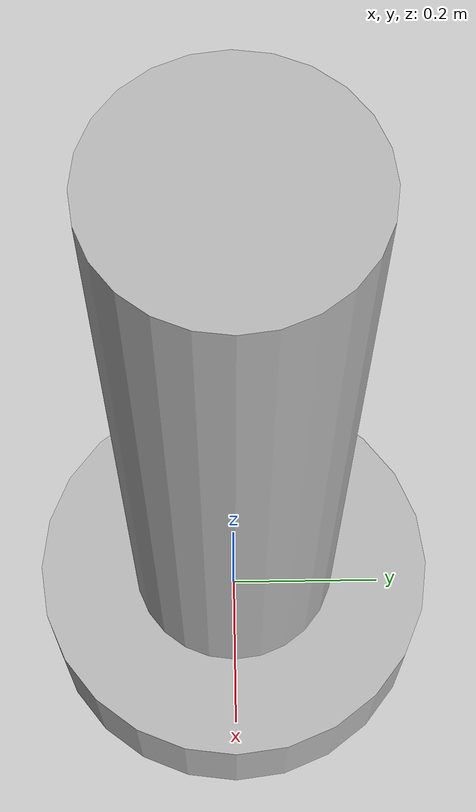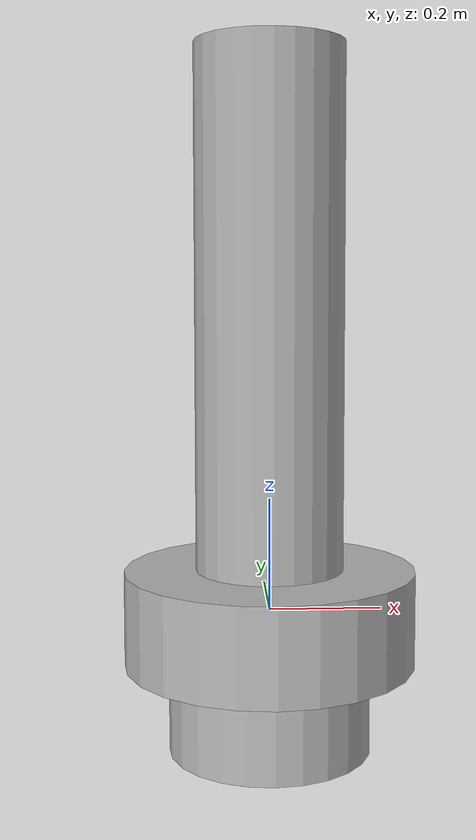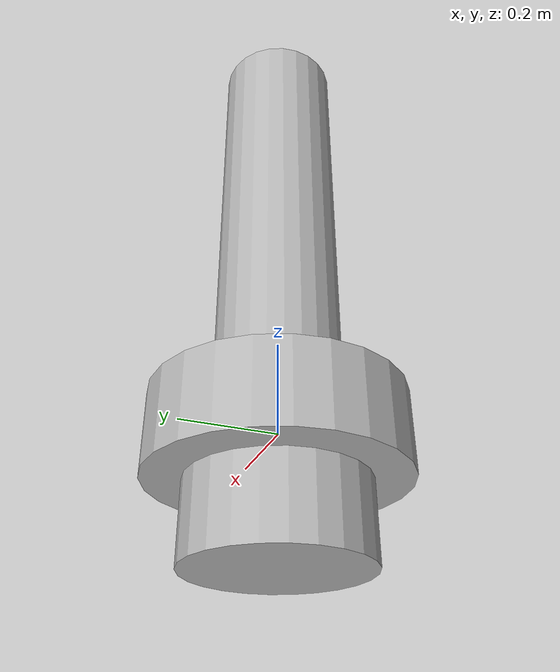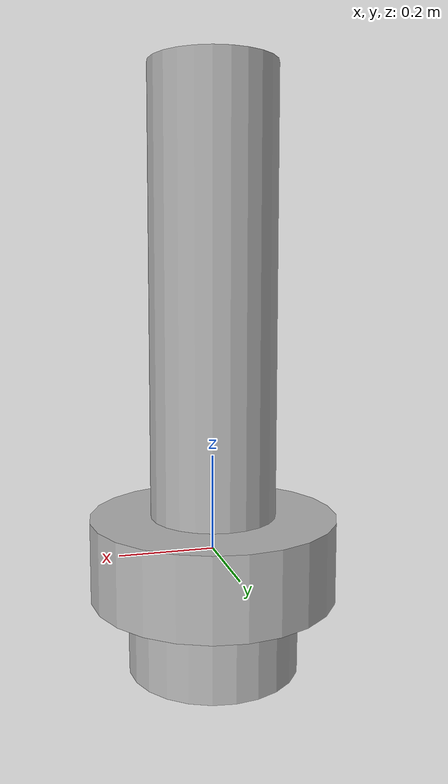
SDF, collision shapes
<?xml version="1.0"?>
<sdf version="1.9">
  <model name="roboboat_surmark_46104_white">
    <link name="link">
      <inertial>
        <pose>0 0 -0.2556 0 0 0</pose>
        <mass>36.4742</mass>
        <inertia>
          <ixx>4.94454</ixx>
          <ixy>0</ixy>
          <ixz>0</ixz>
          <iyy>4.94454</iyy>
          <iyz>0</iyz>
          <izz>0.410335</izz>
        </inertia>
      </inertial>
      <collision name="skirt_collision">
        <pose>0 0 -0.1758 0 0 0</pose>
        <geometry>
          <cylinder><radius>0.181</radius><length>0.1596</length></cylinder>
        </geometry>
      </collision>
      <collision name="ring_collision">
        <pose>0 0 -0.011 0 0 0</pose>
        <geometry>
          <cylinder><radius>0.26</radius><length>0.17</length></cylinder>
        </geometry>
      </collision>
      <collision name="column_collision">
        <pose>0 0 0.5335 0 0 0</pose>
        <geometry>
          <cylinder><radius>0.132</radius><length>0.9191</length></cylinder>
        </geometry>
      </collision>
      <visual name="visual">
        <geometry>
          <mesh>
            <uri>https://fuel.gazebosim.org/1.0/ngxingyu/models/surmark46104white/tip/files/meshes/white_surmark.dae</uri>
          </mesh>
        </geometry>
      </visual>
    </link>
    <joint name="mooring" type="prismatic">
      <parent>world</parent>
      <child>link</child>
      <axis>
        <xyz>0 0 1</xyz>
      </axis>
    </joint>
    <plugin name="vrx::PolyhedraBuoyancyDrag" filename="libPolyhedraBuoyancyDrag.so">
      <linear_drag>25</linear_drag>
      <angular_drag>2</angular_drag>
      <buoyancy name="skirt">
        <link_name>link</link_name>
        <pose>0 0 -0.1758 0 0 0</pose>
        <geometry>
          <cylinder><radius>0.181</radius><length>0.1596</length></cylinder>
        </geometry>
      </buoyancy>
      <buoyancy name="ring">
        <link_name>link</link_name>
        <pose>0 0 -0.011 0 0 0</pose>
        <geometry>
          <cylinder><radius>0.26</radius><length>0.17</length></cylinder>
        </geometry>
      </buoyancy>
      <buoyancy name="column">
        <link_name>link</link_name>
        <pose>0 0 0.5335 0 0 0</pose>
        <geometry>
          <cylinder><radius>0.132</radius><length>0.9191</length></cylinder>
        </geometry>
      </buoyancy>
      <wavefield>
        <topic>/vrx/wavefield/parameters</topic>
      </wavefield>
    </plugin>
    <plugin filename="gz-sim-label-system" name="gz::sim::systems::Label">
      <label>12</label>
    </plugin>
  </model>
</sdf>
